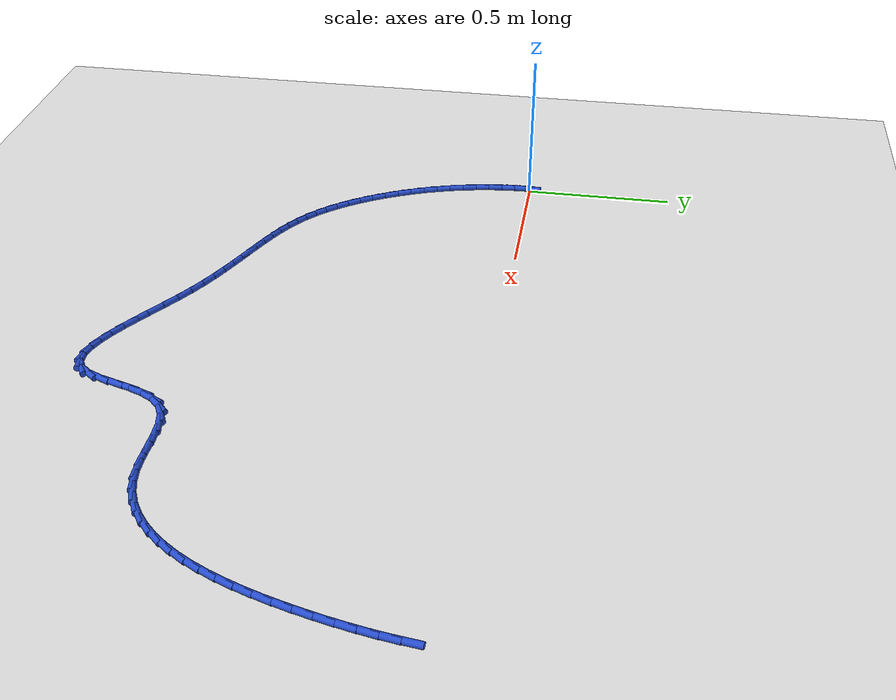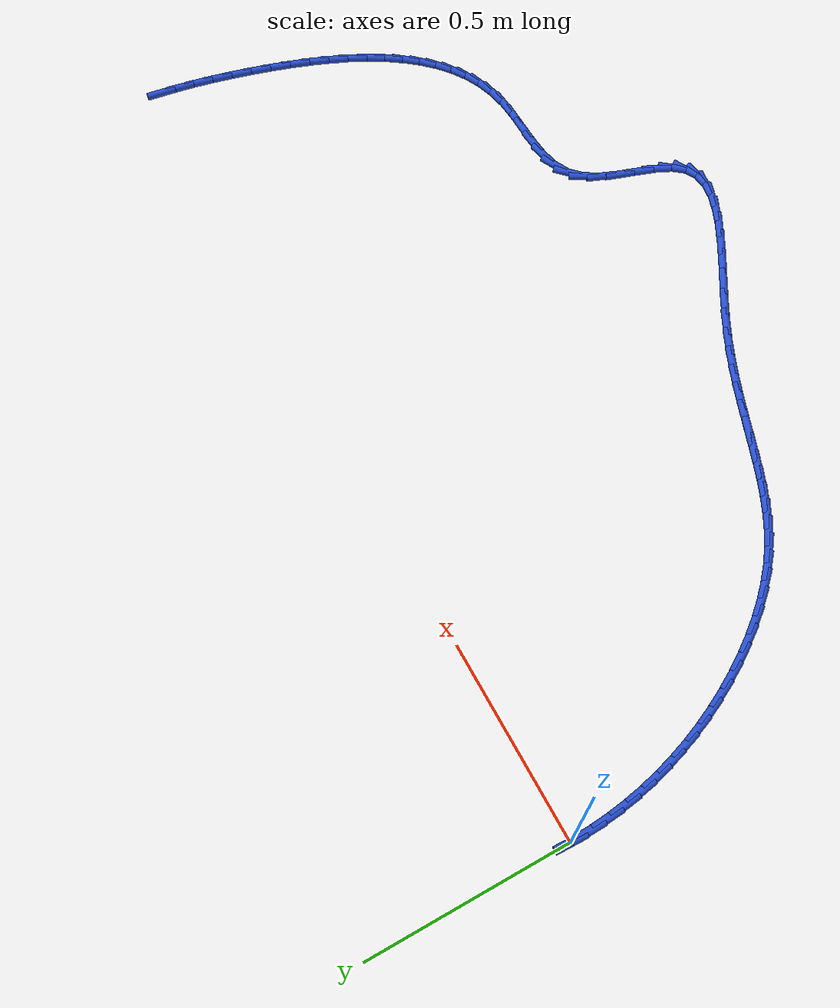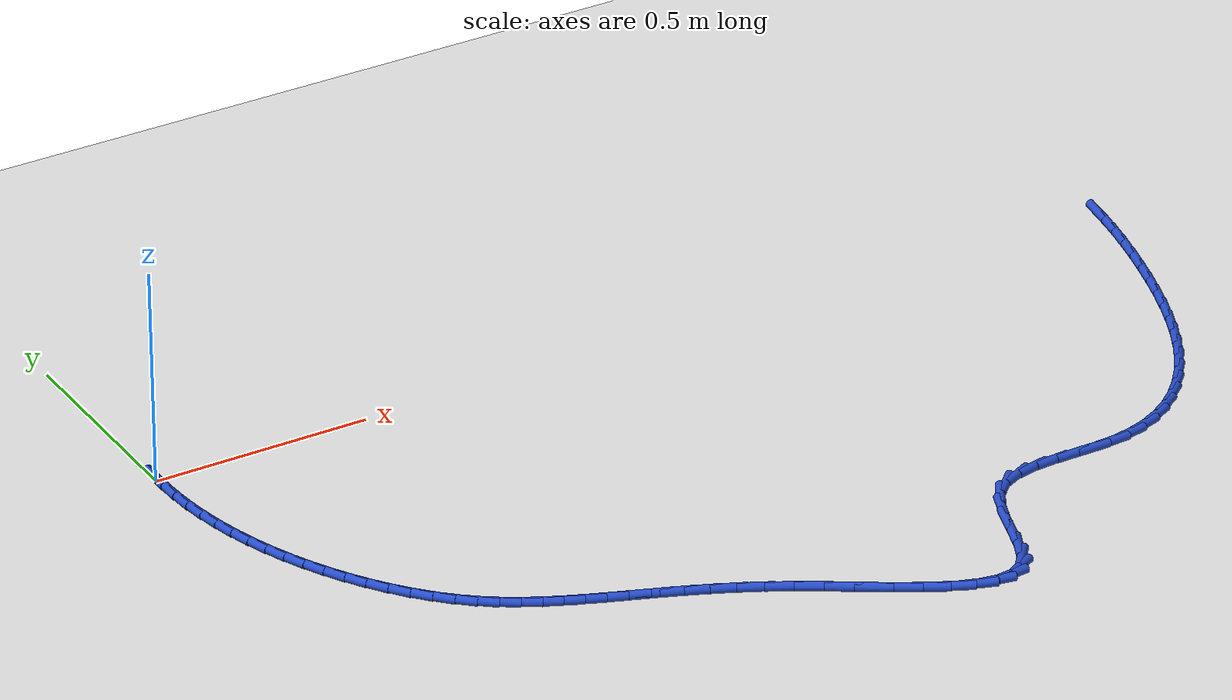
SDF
<sdf version="1.6">
 <world name="default">
  <model name="ground_plane">
   <static>1</static>
   <link name="link">
    <collision name="collision">
     <geometry><plane><normal>0 0 1</normal><size>100 100</size></plane></geometry>
     <surface><friction><ode><mu>100</mu><mu2>50</mu2></ode></friction></surface>
    </collision>
    <visual name="visual">
     <cast_shadows>0</cast_shadows>
     <geometry><plane><normal>0 0 1</normal><size>100 100</size></plane></geometry>
     <material>
      <script><uri>file://media/materials/scripts/gazebo.material</uri><name>Gazebo/WhiteGlow</name></script>
     </material>
    </visual>
   </link>
  </model>
  <model name="line">
   <link name="link_0">
    <pose>-1.734723475976807e-17 -6.938893903907228e-17 0.01 0 1.57 1.5420917679656845</pose>
    <collision name="collision">
     <geometry><cylinder><radius>0.01</radius><length>0.08</length></cylinder></geometry>
    </collision>
    <visual name="visual">
     <material>
      <script><name>Gazebo/Blue</name><uri>file://media/materials/scripts/gazebo.material</uri></script>
     </material>
     <geometry><cylinder><radius>0.01</radius><length>0.08</length></cylinder></geometry>
    </visual>
   </link>
   <link name="link_76">
    <pose>2.304801225114648 -0.05242377547948941 0.01 0 1.57 1.4344736659735262</pose>
    <collision name="collision">
     <geometry><cylinder><radius>0.01</radius><length>0.08</length></cylinder></geometry>
    </collision>
    <visual name="visual">
     <material>
      <script><name>Gazebo/Blue</name><uri>file://media/materials/scripts/gazebo.material</uri></script>
     </material>
     <geometry><cylinder><radius>0.01</radius><length>0.08</length></cylinder></geometry>
    </visual>
   </link>
   <link name="link_77">
    <pose>2.29748057753988 -0.10579159120955402 0.01 0 1.57 1.3997612064832197</pose>
    <collision name="collision">
     <geometry><cylinder><radius>0.01</radius><length>0.08</length></cylinder></geometry>
    </collision>
    <visual name="visual">
     <material>
      <script><name>Gazebo/Blue</name><uri>file://media/materials/scripts/gazebo.material</uri></script>
     </material>
     <geometry><cylinder><radius>0.01</radius><length>0.08</length></cylinder></geometry>
    </visual>
   </link>
   <link name="link_78">
    <pose>2.2881627287867614 -0.15973848040672395 0.01 0 1.57 1.369206772221429</pose>
    <collision name="collision">
     <geometry><cylinder><radius>0.01</radius><length>0.08</length></cylinder></geometry>
    </collision>
    <visual name="visual">
     <material>
      <script><name>Gazebo/Blue</name><uri>file://media/materials/scripts/gazebo.material</uri></script>
     </material>
     <geometry><cylinder><radius>0.01</radius><length>0.08</length></cylinder></geometry>
    </visual>
   </link>
   <link name="link_79">
    <pose>2.2770623122135127 -0.2140549855532052 0.01 0 1.57 1.3423108415167433</pose>
    <collision name="collision">
     <geometry><cylinder><radius>0.01</radius><length>0.08</length></cylinder></geometry>
    </collision>
    <visual name="visual">
     <material>
      <script><name>Gazebo/Blue</name><uri>file://media/materials/scripts/gazebo.material</uri></script>
     </material>
     <geometry><cylinder><radius>0.01</radius><length>0.08</length></cylinder></geometry>
    </visual>
   </link>
   <link name="link_80">
    <pose>2.2643939611783526 -0.26853164913120037 0.01 0 1.57 1.3186073863454515</pose>
    <collision name="collision">
     <geometry><cylinder><radius>0.01</radius><length>0.08</length></cylinder></geometry>
    </collision>
    <visual name="visual">
     <material>
      <script><name>Gazebo/Blue</name><uri>file://media/materials/scripts/gazebo.material</uri></script>
     </material>
     <geometry><cylinder><radius>0.01</radius><length>0.08</length></cylinder></geometry>
    </visual>
   </link>
   <link name="link_81">
    <pose>2.2503697404050595 -0.32295767770993594 0.01 0 1.57 1.2950604817317486</pose>
    <collision name="collision">
     <geometry><cylinder><radius>0.01</radius><length>0.08</length></cylinder></geometry>
    </collision>
    <visual name="visual">
     <material>
      <script><name>Gazebo/Blue</name><uri>file://media/materials/scripts/gazebo.material</uri></script>
     </material>
     <geometry><cylinder><radius>0.01</radius><length>0.08</length></cylinder></geometry>
    </visual>
   </link>
   <link name="link_82">
    <pose>2.235064436088429 -0.3770508811018196 0.01 0 1.57 1.2672904556955817</pose>
    <collision name="collision">
     <geometry><cylinder><radius>0.01</radius><length>0.08</length></cylinder></geometry>
    </collision>
    <visual name="visual">
     <material>
      <script><name>Gazebo/Blue</name><uri>file://media/materials/scripts/gazebo.material</uri></script>
     </material>
     <geometry><cylinder><radius>0.01</radius><length>0.08</length></cylinder></geometry>
    </visual>
   </link>
   <link name="link_83">
    <pose>2.2183492088608707 -0.43042316614326237 0.01 0 1.57 1.2344397856122422</pose>
    <collision name="collision">
     <geometry><cylinder><radius>0.01</radius><length>0.08</length></cylinder></geometry>
    </collision>
    <visual name="visual">
     <material>
      <script><name>Gazebo/Blue</name><uri>file://media/materials/scripts/gazebo.material</uri></script>
     </material>
     <geometry><cylinder><radius>0.01</radius><length>0.08</length></cylinder></geometry>
    </visual>
   </link>
   <link name="link_84">
    <pose>2.2000787312735546 -0.4826778644365525 0.01 0 1.57 1.1958258737990637</pose>
    <collision name="collision">
     <geometry><cylinder><radius>0.01</radius><length>0.08</length></cylinder></geometry>
    </collision>
    <visual name="visual">
     <material>
      <script><name>Gazebo/Blue</name><uri>file://media/materials/scripts/gazebo.material</uri></script>
     </material>
     <geometry><cylinder><radius>0.01</radius><length>0.08</length></cylinder></geometry>
    </visual>
   </link>
   <link name="link_85">
    <pose>2.180107675877653 -0.5334183075839746 0.01 0 1.57 1.150607880453237</pose>
    <collision name="collision">
     <geometry><cylinder><radius>0.01</radius><length>0.08</length></cylinder></geometry>
    </collision>
    <visual name="visual">
     <material>
      <script><name>Gazebo/Blue</name><uri>file://media/materials/scripts/gazebo.material</uri></script>
     </material>
     <geometry><cylinder><radius>0.01</radius><length>0.08</length></cylinder></geometry>
    </visual>
   </link>
   <link name="link_86">
    <pose>2.158290715224338 -0.5822478271878169 0.01 0 1.57 1.0977827968150167</pose>
    <collision name="collision">
     <geometry><cylinder><radius>0.01</radius><length>0.08</length></cylinder></geometry>
    </collision>
    <visual name="visual">
     <material>
      <script><name>Gazebo/Blue</name><uri>file://media/materials/scripts/gazebo.material</uri></script>
     </material>
     <geometry><cylinder><radius>0.01</radius><length>0.08</length></cylinder></geometry>
    </visual>
   </link>
   <link name="link_87">
    <pose>2.1344825218647805 -0.628769754850365 0.01 0 1.57 1.0362006165089523</pose>
    <collision name="collision">
     <geometry><cylinder><radius>0.01</radius><length>0.08</length></cylinder></geometry>
    </collision>
    <visual name="visual">
     <material>
      <script><name>Gazebo/Blue</name><uri>file://media/materials/scripts/gazebo.material</uri></script>
     </material>
     <geometry><cylinder><radius>0.01</radius><length>0.08</length></cylinder></geometry>
    </visual>
   </link>
   <link name="link_88">
    <pose>2.1085377683501534 -0.6725874221739048 0.01 0 1.57 0.9646188904463368</pose>
    <collision name="collision">
     <geometry><cylinder><radius>0.01</radius><length>0.08</length></cylinder></geometry>
    </collision>
    <visual name="visual">
     <material>
      <script><name>Gazebo/Blue</name><uri>file://media/materials/scripts/gazebo.material</uri></script>
     </material>
     <geometry><cylinder><radius>0.01</radius><length>0.08</length></cylinder></geometry>
    </visual>
   </link>
   <link name="link_89">
    <pose>2.080311127231628 -0.7133041607607241 0.01 0 1.57 0.8818271363376375</pose>
    <collision name="collision">
     <geometry><cylinder><radius>0.01</radius><length>0.08</length></cylinder></geometry>
    </collision>
    <visual name="visual">
     <material>
      <script><name>Gazebo/Blue</name><uri>file://media/materials/scripts/gazebo.material</uri></script>
     </material>
     <geometry><cylinder><radius>0.01</radius><length>0.08</length></cylinder></geometry>
    </visual>
   </link>
   <link name="link_90">
    <pose>2.0496572710603753 -0.7505233022131088 0.01 0 1.57 0.7868778822481812</pose>
    <collision name="collision">
     <geometry><cylinder><radius>0.01</radius><length>0.08</length></cylinder></geometry>
    </collision>
    <visual name="visual">
     <material>
      <script><name>Gazebo/Blue</name><uri>file://media/materials/scripts/gazebo.material</uri></script>
     </material>
     <geometry><cylinder><radius>0.01</radius><length>0.08</length></cylinder></geometry>
    </visual>
   </link>
   <link name="link_91">
    <pose>2.016430872387569 -0.783848178133345 0.01 0 1.57 0.6794480292651153</pose>
    <collision name="collision">
     <geometry><cylinder><radius>0.01</radius><length>0.08</length></cylinder></geometry>
    </collision>
    <visual name="visual">
     <material>
      <script><name>Gazebo/Blue</name><uri>file://media/materials/scripts/gazebo.material</uri></script>
     </material>
     <geometry><cylinder><radius>0.01</radius><length>0.08</length></cylinder></geometry>
    </visual>
   </link>
   <link name="link_92">
    <pose>1.980486603764378 -0.8128821201237196 0.01 0 1.57 0.5602962173215207</pose>
    <collision name="collision">
     <geometry><cylinder><radius>0.01</radius><length>0.08</length></cylinder></geometry>
    </collision>
    <visual name="visual">
     <material>
      <script><name>Gazebo/Blue</name><uri>file://media/materials/scripts/gazebo.material</uri></script>
     </material>
     <geometry><cylinder><radius>0.01</radius><length>0.08</length></cylinder></geometry>
    </visual>
   </link>
   <link name="link_93">
    <pose>1.9416791377419778 -0.8372284597865194 0.01 0 1.57 0.43166587089129704</pose>
    <collision name="collision">
     <geometry><cylinder><radius>0.01</radius><length>0.08</length></cylinder></geometry>
    </collision>
    <visual name="visual">
     <material>
      <script><name>Gazebo/Blue</name><uri>file://media/materials/scripts/gazebo.material</uri></script>
     </material>
     <geometry><cylinder><radius>0.01</radius><length>0.08</length></cylinder></geometry>
    </visual>
   </link>
   <link name="link_94">
    <pose>1.8998631468715361 -0.8564905287240303 0.01 0 1.57 0.2973661381251523</pose>
    <collision name="collision">
     <geometry><cylinder><radius>0.01</radius><length>0.08</length></cylinder></geometry>
    </collision>
    <visual name="visual">
     <material>
      <script><name>Gazebo/Blue</name><uri>file://media/materials/scripts/gazebo.material</uri></script>
     </material>
     <geometry><cylinder><radius>0.01</radius><length>0.08</length></cylinder></geometry>
    </visual>
   </link>
   <link name="link_95">
    <pose>1.8548933037042274 -0.8702716585385393 0.01 0 1.57 0.16238319996205794</pose>
    <collision name="collision">
     <geometry><cylinder><radius>0.01</radius><length>0.08</length></cylinder></geometry>
    </collision>
    <visual name="visual">
     <material>
      <script><name>Gazebo/Blue</name><uri>file://media/materials/scripts/gazebo.material</uri></script>
     </material>
     <geometry><cylinder><radius>0.01</radius><length>0.08</length></cylinder></geometry>
    </visual>
   </link>
   <link name="link_96">
    <pose>1.8066265351616315 -0.8781789943594657 0.01 0 1.57 0.05005989652725407</pose>
    <collision name="collision">
     <geometry><cylinder><radius>0.01</radius><length>0.08</length></cylinder></geometry>
    </collision>
    <visual name="visual">
     <material>
      <script><name>Gazebo/Blue</name><uri>file://media/materials/scripts/gazebo.material</uri></script>
     </material>
     <geometry><cylinder><radius>0.01</radius><length>0.08</length></cylinder></geometry>
    </visual>
   </link>
   <link name="link_97">
    <pose>1.75546515692339 -0.8807422692012107 0.01 0 1.57 -0.0025486317237157128</pose>
    <collision name="collision">
     <geometry><cylinder><radius>0.01</radius><length>0.08</length></cylinder></geometry>
    </collision>
    <visual name="visual">
     <material>
      <script><name>Gazebo/Blue</name><uri>file://media/materials/scripts/gazebo.material</uri></script>
     </material>
     <geometry><cylinder><radius>0.01</radius><length>0.08</length></cylinder></geometry>
    </visual>
   </link>
   <link name="link_98">
    <pose>1.703063246729208 -0.8806087157413398 0.01 0 1.57 0.0021760531063059834</pose>
    <collision name="collision">
     <geometry><cylinder><radius>0.01</radius><length>0.08</length></cylinder></geometry>
    </collision>
    <visual name="visual">
     <material>
      <script><name>Gazebo/Blue</name><uri>file://media/materials/scripts/gazebo.material</uri></script>
     </material>
     <geometry><cylinder><radius>0.01</radius><length>0.08</length></cylinder></geometry>
    </visual>
   </link>
   <link name="link_99">
    <pose>1.651249802759668 -0.8807214647250015 0.01 0 1.57 0.06675191186062432</pose>
    <collision name="collision">
     <geometry><cylinder><radius>0.01</radius><length>0.08</length></cylinder></geometry>
    </collision>
    <visual name="visual">
     <material>
      <script><name>Gazebo/Blue</name><uri>file://media/materials/scripts/gazebo.material</uri></script>
     </material>
     <geometry><cylinder><radius>0.01</radius><length>0.08</length></cylinder></geometry>
    </visual>
   </link>
   <link name="link_100">
    <pose>1.6018538231953552 -0.8840236468973434 0.01 0 1.57 0.206002344046326</pose>
    <collision name="collision">
     <geometry><cylinder><radius>0.01</radius><length>0.08</length></cylinder></geometry>
    </collision>
    <visual name="visual">
     <material>
      <script><name>Gazebo/Blue</name><uri>file://media/materials/scripts/gazebo.material</uri></script>
     </material>
     <geometry><cylinder><radius>0.01</radius><length>0.08</length></cylinder></geometry>
    </visual>
   </link>
   <link name="link_101">
    <pose>1.5567043062168537 -0.8934583930035128 0.01 0 1.57 0.4424092823524292</pose>
    <collision name="collision">
     <geometry><cylinder><radius>0.01</radius><length>0.08</length></cylinder></geometry>
    </collision>
    <visual name="visual">
     <material>
      <script><name>Gazebo/Blue</name><uri>file://media/materials/scripts/gazebo.material</uri></script>
     </material>
     <geometry><cylinder><radius>0.01</radius><length>0.08</length></cylinder></geometry>
    </visual>
   </link>
   <link name="link_102">
    <pose>1.517630250004746 -0.9119688337886586 0.01 0 1.57 0.7711733082926068</pose>
    <collision name="collision">
     <geometry><cylinder><radius>0.01</radius><length>0.08</length></cylinder></geometry>
    </collision>
    <visual name="visual">
     <material>
      <script><name>Gazebo/Blue</name><uri>file://media/materials/scripts/gazebo.material</uri></script>
     </material>
     <geometry><cylinder><radius>0.01</radius><length>0.08</length></cylinder></geometry>
    </visual>
   </link>
   <link name="link_103">
    <pose>1.4863739861095528 -0.9423482795041932 0.01 0 1.57 1.0504179033292225</pose>
    <collision name="collision">
     <geometry><cylinder><radius>0.01</radius><length>0.08</length></cylinder></geometry>
    </collision>
    <visual name="visual">
     <material>
      <script><name>Gazebo/Blue</name><uri>file://media/materials/scripts/gazebo.material</uri></script>
     </material>
     <geometry><cylinder><radius>0.01</radius><length>0.08</length></cylinder></geometry>
    </visual>
   </link>
   <link name="link_104">
    <pose>1.4626103411475355 -0.9838159472376871 0.01 0 1.57 1.2000997598057168</pose>
    <collision name="collision">
     <geometry><cylinder><radius>0.01</radius><length>0.08</length></cylinder></geometry>
    </collision>
    <visual name="visual">
     <material>
      <script><name>Gazebo/Blue</name><uri>file://media/materials/scripts/gazebo.material</uri></script>
     </material>
     <geometry><cylinder><radius>0.01</radius><length>0.08</length></cylinder></geometry>
    </visual>
   </link>
   <link name="link_105">
    <pose>1.4439045705642541 -1.0319442410631512 0.01 0 1.57 1.2590220953606888</pose>
    <collision name="collision">
     <geometry><cylinder><radius>0.01</radius><length>0.08</length></cylinder></geometry>
    </collision>
    <visual name="visual">
     <material>
      <script><name>Gazebo/Blue</name><uri>file://media/materials/scripts/gazebo.material</uri></script>
     </material>
     <geometry><cylinder><radius>0.01</radius><length>0.08</length></cylinder></geometry>
    </visual>
   </link>
   <link name="link_106">
    <pose>1.4277268488578911 -1.0821411987411664 0.01 0 1.57 1.2436134570174953</pose>
    <collision name="collision">
     <geometry><cylinder><radius>0.01</radius><length>0.08</length></cylinder></geometry>
    </collision>
    <visual name="visual">
     <material>
      <script><name>Gazebo/Blue</name><uri>file://media/materials/scripts/gazebo.material</uri></script>
     </material>
     <geometry><cylinder><radius>0.01</radius><length>0.08</length></cylinder></geometry>
    </visual>
   </link>
   <link name="link_107">
    <pose>1.4115473505266272 -1.1298148580323155 0.01 0 1.57 1.1385544335653912</pose>
    <collision name="collision">
     <geometry><cylinder><radius>0.01</radius><length>0.08</length></cylinder></geometry>
    </collision>
    <visual name="visual">
     <material>
      <script><name>Gazebo/Blue</name><uri>file://media/materials/scripts/gazebo.material</uri></script>
     </material>
     <geometry><cylinder><radius>0.01</radius><length>0.08</length></cylinder></geometry>
    </visual>
   </link>
   <link name="link_108">
    <pose>1.3928362500686438 -1.1703732566971803 0.01 0 1.57 0.883528685970104</pose>
    <collision name="collision">
     <geometry><cylinder><radius>0.01</radius><length>0.08</length></cylinder></geometry>
    </collision>
    <visual name="visual">
     <material>
      <script><name>Gazebo/Blue</name><uri>file://media/materials/scripts/gazebo.material</uri></script>
     </material>
     <geometry><cylinder><radius>0.01</radius><length>0.08</length></cylinder></geometry>
    </visual>
   </link>
   <link name="link_109">
    <pose>1.369099725533176 -1.199293685960028 0.01 0 1.57 0.47573924008997964</pose>
    <collision name="collision">
     <geometry><cylinder><radius>0.01</radius><length>0.08</length></cylinder></geometry>
    </collision>
    <visual name="visual">
     <material>
      <script><name>Gazebo/Blue</name><uri>file://media/materials/scripts/gazebo.material</uri></script>
     </material>
     <geometry><cylinder><radius>0.01</radius><length>0.08</length></cylinder></geometry>
    </visual>
   </link>
   <link name="link_110">
    <pose>1.3392149368721225 -1.214690544847956 0.01 0 1.57 0.09526611290239778</pose>
    <collision name="collision">
     <geometry><cylinder><radius>0.01</radius><length>0.08</length></cylinder></geometry>
    </collision>
    <visual name="visual">
     <material>
      <script><name>Gazebo/Blue</name><uri>file://media/materials/scripts/gazebo.material</uri></script>
     </material>
     <geometry><cylinder><radius>0.01</radius><length>0.08</length></cylinder></geometry>
    </visual>
   </link>
   <link name="link_111">
    <pose>1.3038235950842811 -1.2180723773619735 0.01 0 1.57 -0.17025828210758084</pose>
    <collision name="collision">
     <geometry><cylinder><radius>0.01</radius><length>0.08</length></cylinder></geometry>
    </collision>
    <visual name="visual">
     <material>
      <script><name>Gazebo/Blue</name><uri>file://media/materials/scripts/gazebo.material</uri></script>
     </material>
     <geometry><cylinder><radius>0.01</radius><length>0.08</length></cylinder></geometry>
    </visual>
   </link>
   <link name="link_112">
    <pose>1.26368370344632 -1.211171417744942 0.01 0 1.57 -0.3367931946872681</pose>
    <collision name="collision">
     <geometry><cylinder><radius>0.01</radius><length>0.08</length></cylinder></geometry>
    </collision>
    <visual name="visual">
     <material>
      <script><name>Gazebo/Blue</name><uri>file://media/materials/scripts/gazebo.material</uri></script>
     </material>
     <geometry><cylinder><radius>0.01</radius><length>0.08</length></cylinder></geometry>
    </visual>
   </link>
   <link name="link_113">
    <pose>1.219553265234906 -1.1957199002397234 0.01 0 1.57 -0.43952066374098026</pose>
    <collision name="collision">
     <geometry><cylinder><radius>0.01</radius><length>0.08</length></cylinder></geometry>
    </collision>
    <visual name="visual">
     <material>
      <script><name>Gazebo/Blue</name><uri>file://media/materials/scripts/gazebo.material</uri></script>
     </material>
     <geometry><cylinder><radius>0.01</radius><length>0.08</length></cylinder></geometry>
    </visual>
   </link>
   <link name="link_114">
    <pose>1.1721902837267082 -1.1734500590891799 0.01 0 1.57 -0.5020000619410612</pose>
    <collision name="collision">
     <geometry><cylinder><radius>0.01</radius><length>0.08</length></cylinder></geometry>
    </collision>
    <visual name="visual">
     <material>
      <script><name>Gazebo/Blue</name><uri>file://media/materials/scripts/gazebo.material</uri></script>
     </material>
     <geometry><cylinder><radius>0.01</radius><length>0.08</length></cylinder></geometry>
    </visual>
   </link>
   <link name="link_115">
    <pose>1.1223527621983922 -1.1460941285361717 0.01 0 1.57 -0.537237895199799</pose>
    <collision name="collision">
     <geometry><cylinder><radius>0.01</radius><length>0.08</length></cylinder></geometry>
    </collision>
    <visual name="visual">
     <material>
      <script><name>Gazebo/Blue</name><uri>file://media/materials/scripts/gazebo.material</uri></script>
     </material>
     <geometry><cylinder><radius>0.01</radius><length>0.08</length></cylinder></geometry>
    </visual>
   </link>
   <link name="link_116">
    <pose>1.070798703926627 -1.1153843428235615 0.01 0 1.57 -0.5518754743743217</pose>
    <collision name="collision">
     <geometry><cylinder><radius>0.01</radius><length>0.08</length></cylinder></geometry>
    </collision>
    <visual name="visual">
     <material>
      <script><name>Gazebo/Blue</name><uri>file://media/materials/scripts/gazebo.material</uri></script>
     </material>
     <geometry><cylinder><radius>0.01</radius><length>0.08</length></cylinder></geometry>
    </visual>
   </link>
   <link name="link_117">
    <pose>1.0182861121880815 -1.0830529361942118 0.01 0 1.57 -0.5486491045451183</pose>
    <collision name="collision">
     <geometry><cylinder><radius>0.01</radius><length>0.08</length></cylinder></geometry>
    </collision>
    <visual name="visual">
     <material>
      <script><name>Gazebo/Blue</name><uri>file://media/materials/scripts/gazebo.material</uri></script>
     </material>
     <geometry><cylinder><radius>0.01</radius><length>0.08</length></cylinder></geometry>
    </visual>
   </link>
   <link name="link_118">
    <pose>0.9655729902594218 -1.0508321428909828 0.01 0 1.57 -0.5274135252170403</pose>
    <collision name="collision">
     <geometry><cylinder><radius>0.01</radius><length>0.08</length></cylinder></geometry>
    </collision>
    <visual name="visual">
     <material>
      <script><name>Gazebo/Blue</name><uri>file://media/materials/scripts/gazebo.material</uri></script>
     </material>
     <geometry><cylinder><radius>0.01</radius><length>0.08</length></cylinder></geometry>
    </visual>
   </link>
   <link name="link_119">
    <pose>0.9134173414161961 -1.0204541971534538 0.01 0 1.57 -0.48990386660338725</pose>
    <collision name="collision">
     <geometry><cylinder><radius>0.01</radius><length>0.08</length></cylinder></geometry>
    </collision>
    <visual name="visual">
     <material>
      <script><name>Gazebo/Blue</name><uri>file://media/materials/scripts/gazebo.material</uri></script>
     </material>
     <geometry><cylinder><radius>0.01</radius><length>0.08</length></cylinder></geometry>
    </visual>
   </link>
   <link name="link_120">
    <pose>0.8624484787636302 -0.9932743034643912 0.01 0 1.57 -0.45219903946900136</pose>
    <collision name="collision">
     <geometry><cylinder><radius>0.01</radius><length>0.08</length></cylinder></geometry>
    </collision>
    <visual name="visual">
     <material>
      <script><name>Gazebo/Blue</name><uri>file://media/materials/scripts/gazebo.material</uri></script>
     </material>
     <geometry><cylinder><radius>0.01</radius><length>0.08</length></cylinder></geometry>
    </visual>
   </link>
   <link name="link_121">
    <pose>0.8127841286339411 -0.9691488460304208 0.01 0 1.57 -0.4197701443088411</pose>
    <collision name="collision">
     <geometry><cylinder><radius>0.01</radius><length>0.08</length></cylinder></geometry>
    </collision>
    <visual name="visual">
     <material>
      <script><name>Gazebo/Blue</name><uri>file://media/materials/scripts/gazebo.material</uri></script>
     </material>
     <geometry><cylinder><radius>0.01</radius><length>0.08</length></cylinder></geometry>
    </visual>
   </link>
   <link name="link_122">
    <pose>0.7644149092568415 -0.9475618143612251 0.01 0 1.57 -0.3938226056861193</pose>
    <collision name="collision">
     <geometry><cylinder><radius>0.01</radius><length>0.08</length></cylinder></geometry>
    </collision>
    <visual name="visual">
     <material>
      <script><name>Gazebo/Blue</name><uri>file://media/materials/scripts/gazebo.material</uri></script>
     </material>
     <geometry><cylinder><radius>0.01</radius><length>0.08</length></cylinder></geometry>
    </visual>
   </link>
   <link name="link_123">
    <pose>0.7173314388620422 -0.9279971979664863 0.01 0 1.57 -0.3755162671617738</pose>
    <collision name="collision">
     <geometry><cylinder><radius>0.01</radius><length>0.08</length></cylinder></geometry>
    </collision>
    <visual name="visual">
     <material>
      <script><name>Gazebo/Blue</name><uri>file://media/materials/scripts/gazebo.material</uri></script>
     </material>
     <geometry><cylinder><radius>0.01</radius><length>0.08</length></cylinder></geometry>
    </visual>
   </link>
   <link name="link_124">
    <pose>0.6715243356792553 -0.9099389863558863 0.01 0 1.57 -0.3659411250285274</pose>
    <collision name="collision">
     <geometry><cylinder><radius>0.01</radius><length>0.08</length></cylinder></geometry>
    </collision>
    <visual name="visual">
     <material>
      <script><name>Gazebo/Blue</name><uri>file://media/materials/scripts/gazebo.material</uri></script>
     </material>
     <geometry><cylinder><radius>0.01</radius><length>0.08</length></cylinder></geometry>
    </visual>
   </link>
   <link name="link_125">
    <pose>0.6269842179381944 -0.8928711690391086 0.01 0 1.57 -0.3660928373413313</pose>
    <collision name="collision">
     <geometry><cylinder><radius>0.01</radius><length>0.08</length></cylinder></geometry>
    </collision>
    <visual name="visual">
     <material>
      <script><name>Gazebo/Blue</name><uri>file://media/materials/scripts/gazebo.material</uri></script>
     </material>
     <geometry><cylinder><radius>0.01</radius><length>0.08</length></cylinder></geometry>
    </visual>
   </link>
   <link name="link_126">
    <pose>0.5837017038685692 -0.876277735525834 0.01 0 1.57 -0.37683699851734115</pose>
    <collision name="collision">
     <geometry><cylinder><radius>0.01</radius><length>0.08</length></cylinder></geometry>
    </collision>
    <visual name="visual">
     <material>
      <script><name>Gazebo/Blue</name><uri>file://media/materials/scripts/gazebo.material</uri></script>
     </material>
     <geometry><cylinder><radius>0.01</radius><length>0.08</length></cylinder></geometry>
    </visual>
   </link>
   <link name="link_127">
    <pose>0.5416674117000938 -0.8596426753257459 0.01 0 1.57 -0.3988485642994214</pose>
    <collision name="collision">
     <geometry><cylinder><radius>0.01</radius><length>0.08</length></cylinder></geometry>
    </collision>
    <visual name="visual">
     <material>
      <script><name>Gazebo/Blue</name><uri>file://media/materials/scripts/gazebo.material</uri></script>
     </material>
     <geometry><cylinder><radius>0.01</radius><length>0.08</length></cylinder></geometry>
    </visual>
   </link>
   <link name="link_128">
    <pose>0.5008719596624787 -0.8424499779485262 0.01 0 1.57 -0.4325143912925826</pose>
    <collision name="collision">
     <geometry><cylinder><radius>0.01</radius><length>0.08</length></cylinder></geometry>
    </collision>
    <visual name="visual">
     <material>
      <script><name>Gazebo/Blue</name><uri>file://media/materials/scripts/gazebo.material</uri></script>
     </material>
     <geometry><cylinder><radius>0.01</radius><length>0.08</length></cylinder></geometry>
    </visual>
   </link>
   <link name="link_129">
    <pose>0.46130596598543616 -0.824183632903857 0.01 0 1.57 -0.4777960166772828</pose>
    <collision name="collision">
     <geometry><cylinder><radius>0.01</radius><length>0.08</length></cylinder></geometry>
    </collision>
    <visual name="visual">
     <material>
      <script><name>Gazebo/Blue</name><uri>file://media/materials/scripts/gazebo.material</uri></script>
     </material>
     <geometry><cylinder><radius>0.01</radius><length>0.08</length></cylinder></geometry>
    </visual>
   </link>
   <link name="link_130">
    <pose>0.4229600488986792 -0.8043276297014214 0.01 0 1.57 -0.5340700054115444</pose>
    <collision name="collision">
     <geometry><cylinder><radius>0.01</radius><length>0.08</length></cylinder></geometry>
    </collision>
    <visual name="visual">
     <material>
      <script><name>Gazebo/Blue</name><uri>file://media/materials/scripts/gazebo.material</uri></script>
     </material>
     <geometry><cylinder><radius>0.01</radius><length>0.08</length></cylinder></geometry>
    </visual>
   </link>
   <link name="link_131">
    <pose>0.38582482663191864 -0.7823659578509009 0.01 0 1.57 -0.5999931950990524</pose>
    <collision name="collision">
     <geometry><cylinder><radius>0.01</radius><length>0.08</length></cylinder></geometry>
    </collision>
    <visual name="visual">
     <material>
      <script><name>Gazebo/Blue</name><uri>file://media/materials/scripts/gazebo.material</uri></script>
     </material>
     <geometry><cylinder><radius>0.01</radius><length>0.08</length></cylinder></geometry>
    </visual>
   </link>
   <link name="link_132">
    <pose>0.34989091741486744 -0.7577826068619782 0.01 0 1.57 -0.6732580198827247</pose>
    <collision name="collision">
     <geometry><cylinder><radius>0.01</radius><length>0.08</length></cylinder></geometry>
    </collision>
    <visual name="visual">
     <material>
      <script><name>Gazebo/Blue</name><uri>file://media/materials/scripts/gazebo.material</uri></script>
     </material>
     <geometry><cylinder><radius>0.01</radius><length>0.08</length></cylinder></geometry>
    </visual>
   </link>
   <link name="link_133">
    <pose>0.31515097471788633 -0.7300750399393948 0.01 0 1.57 -0.7459381796861676</pose>
    <collision name="collision">
     <geometry><cylinder><radius>0.01</radius><length>0.08</length></cylinder></geometry>
    </collision>
    <visual name="visual">
     <material>
      <script><name>Gazebo/Blue</name><uri>file://media/materials/scripts/gazebo.material</uri></script>
     </material>
     <geometry><cylinder><radius>0.01</radius><length>0.08</length></cylinder></geometry>
    </visual>
   </link>
   <link name="link_134">
    <pose>0.2816555458380935 -0.6991239888550188 0.01 0 1.57 -0.8118862362281406</pose>
    <collision name="collision">
     <geometry><cylinder><radius>0.01</radius><length>0.08</length></cylinder></geometry>
    </collision>
    <visual name="visual">
     <material>
      <script><name>Gazebo/Blue</name><uri>file://media/materials/scripts/gazebo.material</uri></script>
     </material>
     <geometry><cylinder><radius>0.01</radius><length>0.08</length></cylinder></geometry>
    </visual>
   </link>
   <link name="link_135">
    <pose>0.24951999378086506 -0.6652392781704546 0.01 0 1.57 -0.871995818193123</pose>
    <collision name="collision">
     <geometry><cylinder><radius>0.01</radius><length>0.08</length></cylinder></geometry>
    </collision>
    <visual name="visual">
     <material>
      <script><name>Gazebo/Blue</name><uri>file://media/materials/scripts/gazebo.material</uri></script>
     </material>
     <geometry><cylinder><radius>0.01</radius><length>0.08</length></cylinder></geometry>
    </visual>
   </link>
   <link name="link_136">
    <pose>0.21886310670612827 -0.6287534076469088 0.01 0 1.57 -0.9274019746338743</pose>
    <collision name="collision">
     <geometry><cylinder><radius>0.01</radius><length>0.08</length></cylinder></geometry>
    </collision>
    <visual name="visual">
     <material>
      <script><name>Gazebo/Blue</name><uri>file://media/materials/scripts/gazebo.material</uri></script>
     </material>
     <geometry><cylinder><radius>0.01</radius><length>0.08</length></cylinder></geometry>
    </visual>
   </link>
   <link name="link_137">
    <pose>0.18980367277381188 -0.5899988770455896 0.01 0 1.57 -0.9791266107604365</pose>
    <collision name="collision">
     <geometry><cylinder><radius>0.01</radius><length>0.08</length></cylinder></geometry>
    </collision>
    <visual name="visual">
     <material>
      <script><name>Gazebo/Blue</name><uri>file://media/materials/scripts/gazebo.material</uri></script>
     </material>
     <geometry><cylinder><radius>0.01</radius><length>0.08</length></cylinder></geometry>
    </visual>
   </link>
   <link name="link_138">
    <pose>0.16246048014384437 -0.5493081861277049 0.01 0 1.57 -1.0280929069170828</pose>
    <collision name="collision">
     <geometry><cylinder><radius>0.01</radius><length>0.08</length></cylinder></geometry>
    </collision>
    <visual name="visual">
     <material>
      <script><name>Gazebo/Blue</name><uri>file://media/materials/scripts/gazebo.material</uri></script>
     </material>
     <geometry><cylinder><radius>0.01</radius><length>0.08</length></cylinder></geometry>
    </visual>
   </link>
   <link name="link_139">
    <pose>0.13695231697615298 -0.5070138346544609 0.01 0 1.57 -1.0751483792867533</pose>
    <collision name="collision">
     <geometry><cylinder><radius>0.01</radius><length>0.08</length></cylinder></geometry>
    </collision>
    <visual name="visual">
     <material>
      <script><name>Gazebo/Blue</name><uri>file://media/materials/scripts/gazebo.material</uri></script>
     </material>
     <geometry><cylinder><radius>0.01</radius><length>0.08</length></cylinder></geometry>
    </visual>
   </link>
   <link name="link_140">
    <pose>0.11339797143066674 -0.46344832238706635 0.01 0 1.57 -1.1210919952263223</pose>
    <collision name="collision">
     <geometry><cylinder><radius>0.01</radius><length>0.08</length></cylinder></geometry>
    </collision>
    <visual name="visual">
     <material>
      <script><name>Gazebo/Blue</name><uri>file://media/materials/scripts/gazebo.material</uri></script>
     </material>
     <geometry><cylinder><radius>0.01</radius><length>0.08</length></cylinder></geometry>
    </visual>
   </link>
   <link name="link_141">
    <pose>0.091916231667313 -0.4189441490867272 0.01 0 1.57 -1.1667234764793561</pose>
    <collision name="collision">
     <geometry><cylinder><radius>0.01</radius><length>0.08</length></cylinder></geometry>
    </collision>
    <visual name="visual">
     <material>
      <script><name>Gazebo/Blue</name><uri>file://media/materials/scripts/gazebo.material</uri></script>
     </material>
     <geometry><cylinder><radius>0.01</radius><length>0.08</length></cylinder></geometry>
    </visual>
   </link>
   <link name="link_142">
    <pose>0.07261923350906957 -0.3738157834577789 0.01 0 1.57 -1.2127983864731604</pose>
    <collision name="collision">
     <geometry><cylinder><radius>0.01</radius><length>0.08</length></cylinder></geometry>
    </collision>
    <visual name="visual">
     <material>
      <script><name>Gazebo/Blue</name><uri>file://media/materials/scripts/gazebo.material</uri></script>
     </material>
     <geometry><cylinder><radius>0.01</radius><length>0.08</length></cylinder></geometry>
    </visual>
   </link>
   <link name="link_143">
    <pose>0.05555683619818223 -0.3282088944914087 0.01 0 1.57 -1.2594835913380142</pose>
    <collision name="collision">
     <geometry><cylinder><radius>0.01</radius><length>0.08</length></cylinder></geometry>
    </collision>
    <visual name="visual">
     <material>
      <script><name>Gazebo/Blue</name><uri>file://media/materials/scripts/gazebo.material</uri></script>
     </material>
     <geometry><cylinder><radius>0.01</radius><length>0.08</length></cylinder></geometry>
    </visual>
   </link>
   <link name="link_144">
    <pose>0.04074487835409704 -0.28217693880455114 0.01 0 1.57 -1.3067468969385774</pose>
    <collision name="collision">
     <geometry><cylinder><radius>0.01</radius><length>0.08</length></cylinder></geometry>
    </collision>
    <visual name="visual">
     <material>
      <script><name>Gazebo/Blue</name><uri>file://media/materials/scripts/gazebo.material</uri></script>
     </material>
     <geometry><cylinder><radius>0.01</radius><length>0.08</length></cylinder></geometry>
    </visual>
   </link>
   <link name="link_145">
    <pose>0.02819885354659241 -0.23577243776232928 0.01 0 1.57 -1.3545481140774647</pose>
    <collision name="collision">
     <geometry><cylinder><radius>0.01</radius><length>0.08</length></cylinder></geometry>
    </collision>
    <visual name="visual">
     <material>
      <script><name>Gazebo/Blue</name><uri>file://media/materials/scripts/gazebo.material</uri></script>
     </material>
     <geometry><cylinder><radius>0.01</radius><length>0.08</length></cylinder></geometry>
    </visual>
   </link>
   <link name="link_146">
    <pose>0.017934255345445817 -0.18904791272986324 0.01 0 1.57 -1.4028398444984453</pose>
    <collision name="collision">
     <geometry><cylinder><radius>0.01</radius><length>0.08</length></cylinder></geometry>
    </collision>
    <visual name="visual">
     <material>
      <script><name>Gazebo/Blue</name><uri>file://media/materials/scripts/gazebo.material</uri></script>
     </material>
     <geometry><cylinder><radius>0.01</radius><length>0.08</length></cylinder></geometry>
    </visual>
   </link>
   <link name="link_147">
    <pose>0.009966577320435386 -0.14205588507227557 0.01 0 1.57 -1.4515673937339508</pose>
    <collision name="collision">
     <geometry><cylinder><radius>0.01</radius><length>0.08</length></cylinder></geometry>
    </collision>
    <visual name="visual">
     <material>
      <script><name>Gazebo/Blue</name><uri>file://media/materials/scripts/gazebo.material</uri></script>
     </material>
     <geometry><cylinder><radius>0.01</radius><length>0.08</length></cylinder></geometry>
    </visual>
   </link>
   <link name="link_148">
    <pose>0.00431131304133907 -0.09484887615468851 0.01 0 1.57 -1.5006688635906662</pose>
    <collision name="collision">
     <geometry><cylinder><radius>0.01</radius><length>0.08</length></cylinder></geometry>
    </collision>
    <visual name="visual">
     <material>
      <script><name>Gazebo/Blue</name><uri>file://media/materials/scripts/gazebo.material</uri></script>
     </material>
     <geometry><cylinder><radius>0.01</radius><length>0.08</length></cylinder></geometry>
    </visual>
   </link>
   <link name="link_149">
    <pose>0.000983956077934606 -0.047479407342222314 0.01 0 1.57 -1.5500754436410917</pose>
    <collision name="collision">
     <geometry><cylinder><radius>0.01</radius><length>0.08</length></cylinder></geometry>
    </collision>
    <visual name="visual">
     <material>
      <script><name>Gazebo/Blue</name><uri>file://media/materials/scripts/gazebo.material</uri></script>
     </material>
     <geometry><cylinder><radius>0.01</radius><length>0.08</length></cylinder></geometry>
    </visual>
   </link>
   <link name="link_150">
    <pose>-1.0408340855860843e-17 -1.1102230246251565e-16 0.01 0 1.57 1.541880740409363</pose>
    <collision name="collision">
     <geometry><cylinder><radius>0.01</radius><length>0.08</length></cylinder></geometry>
    </collision>
    <visual name="visual">
     <material>
      <script><name>Gazebo/Blue</name><uri>file://media/materials/scripts/gazebo.material</uri></script>
     </material>
     <geometry><cylinder><radius>0.01</radius><length>0.08</length></cylinder></geometry>
    </visual>
   </link>
  </model>
 </world>
</sdf>
